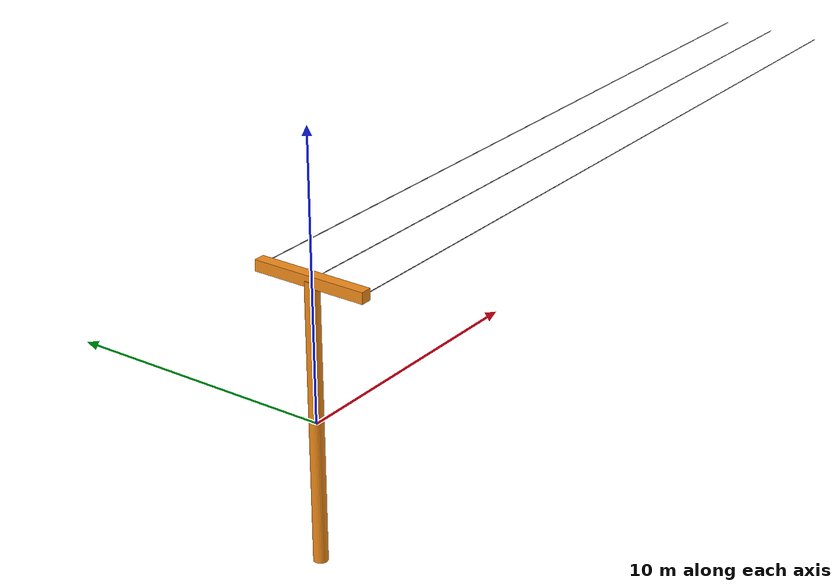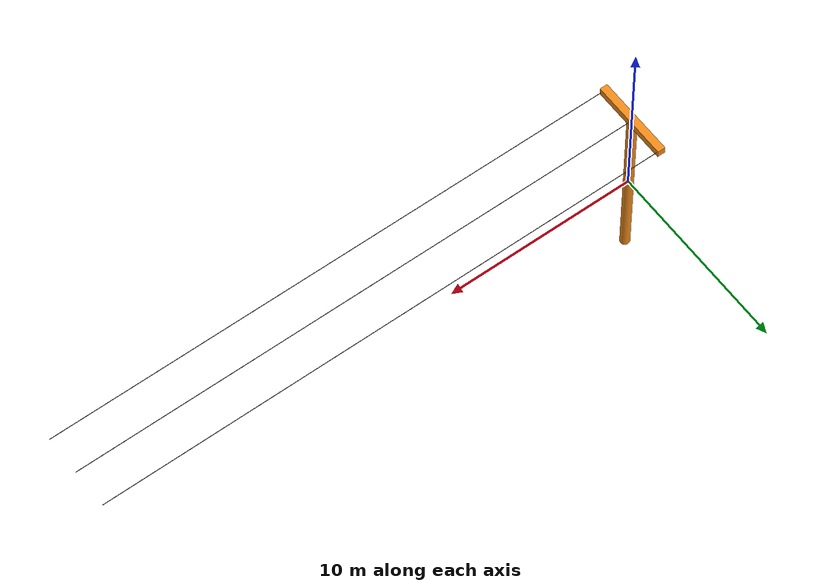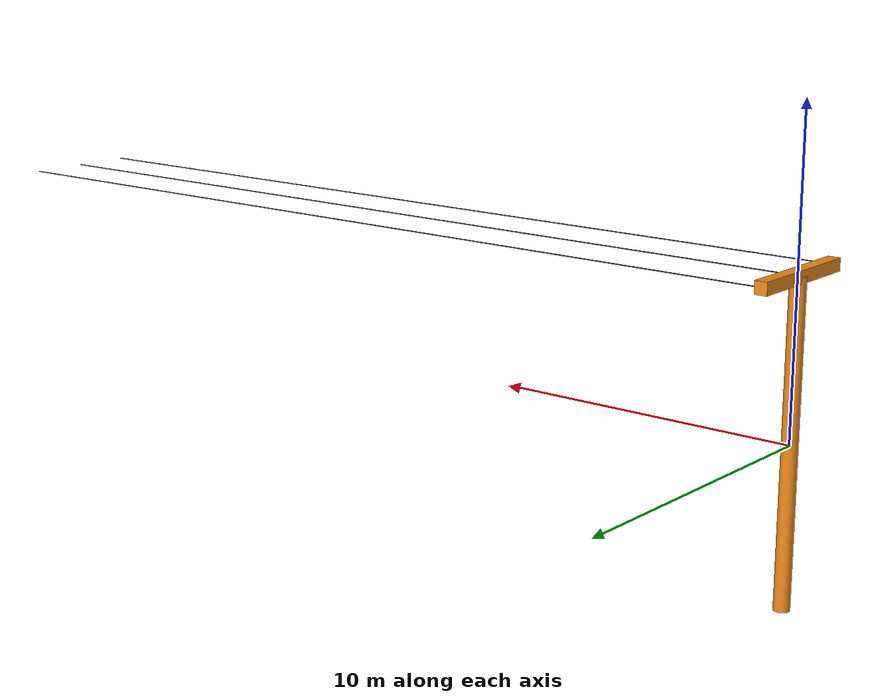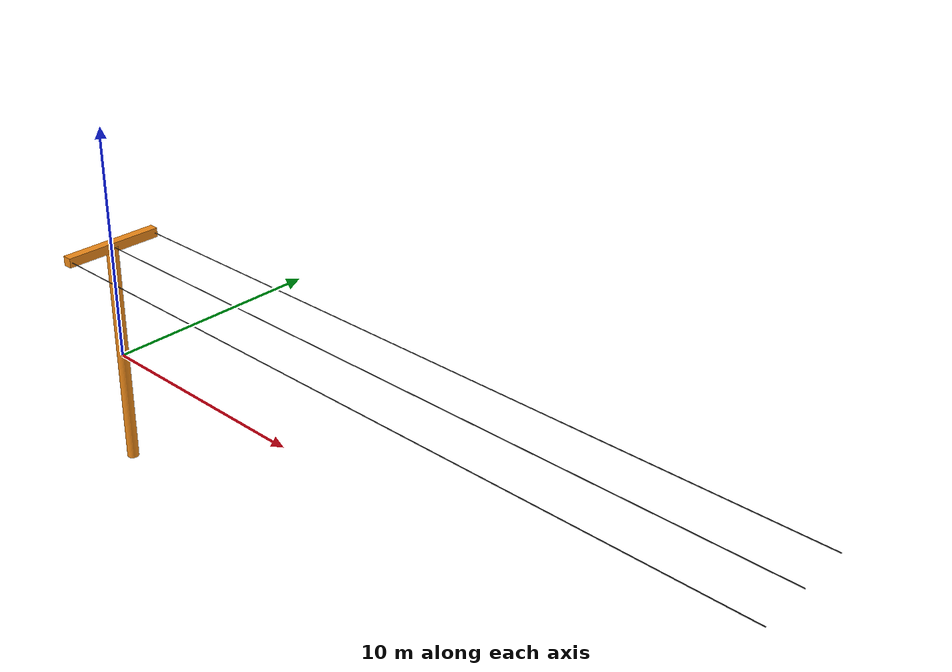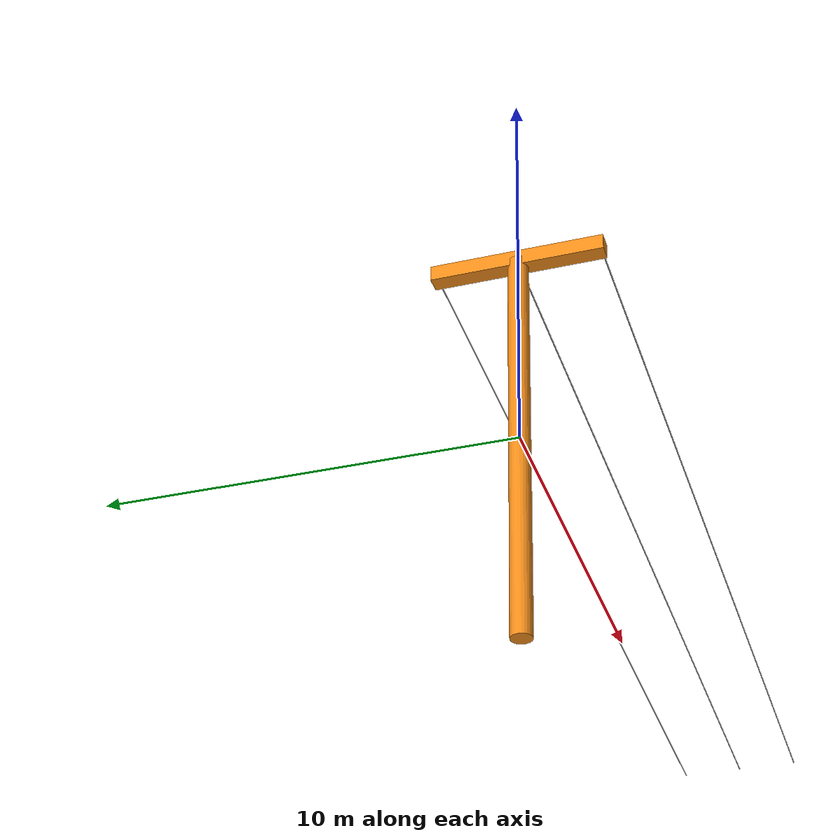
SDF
<sdf version='1.6'>
  <model name='pole'>
    <link name='footprint'>
      <pose frame=''>0 0 0 0 -0 0</pose>
      <inertial>
        <pose frame=''>0.044423 0 0.064166 0 -0 0</pose>
        <mass>101.3</mass>
        <inertia>
          <ixx>871.771</ixx>
          <ixy>-4.44089e-16</ixy>
          <ixz>-22.2113</ixz>
          <iyy>938.276</iyy>
          <iyz>0</iyz>
          <izz>75.2211</izz>
        </inertia>
      </inertial>
      <collision name='footprint_fixed_joint_lump__base_link_collision'>
        <pose frame=''>0 0 0 0 -0 0</pose>
        <geometry>
          <cylinder>
            <length>10</length>
            <radius>0.25</radius>
          </cylinder>
        </geometry>
        <surface>
          <contact>
            <ode/>
          </contact>
          <friction>
            <ode/>
          </friction>
        </surface>
      </collision>
      <collision name='footprint_fixed_joint_lump__top_collision_1'>
        <pose frame=''>0 0 5 0 -0 1.5708</pose>
        <geometry>
          <box>
            <size>4.2 0.4 0.4</size>
          </box>
        </geometry>
        <surface>
          <contact>
            <ode/>
          </contact>
          <friction>
            <ode/>
          </friction>
        </surface>
      </collision>
      <collision name='footprint_fixed_joint_lump__center_cable_link_collision_2'>
        <pose frame=''>15 0 5 3.14159 1.57079 3.14159</pose>
        <geometry>
          <cylinder>
            <length>30</length>
            <radius>0.015</radius>
          </cylinder>
        </geometry>
        <surface>
          <contact>
            <ode/>
          </contact>
          <friction>
            <ode/>
          </friction>
        </surface>
      </collision>
      <collision name='footprint_fixed_joint_lump__left_cable_link_collision_3'>
        <pose frame=''>15 1.995 5 3.14159 1.57079 3.14159</pose>
        <geometry>
          <cylinder>
            <length>30</length>
            <radius>0.015</radius>
          </cylinder>
        </geometry>
        <surface>
          <contact>
            <ode/>
          </contact>
          <friction>
            <ode/>
          </friction>
        </surface>
      </collision>
      <collision name='footprint_fixed_joint_lump__right_cable_link_collision_4'>
        <pose frame=''>15 -1.995 5 3.14159 1.57079 3.14159</pose>
        <geometry>
          <cylinder>
            <length>30</length>
            <radius>0.015</radius>
          </cylinder>
        </geometry>
        <surface>
          <contact>
            <ode/>
          </contact>
          <friction>
            <ode/>
          </friction>
        </surface>
      </collision>
      <visual name='footprint_fixed_joint_lump__base_link_visual'>
        <pose frame=''>0 0 0 0 -0 0</pose>
        <geometry>
          <cylinder>
            <length>10</length>
            <radius>0.25</radius>
          </cylinder>
        </geometry>
        <material>
          <script>
            <name>Gazebo/Orange</name>
            <uri>file://media/materials/scripts/gazebo.material</uri>
          </script>
        </material>
      </visual>
      <visual name='footprint_fixed_joint_lump__top_visual_1'>
        <pose frame=''>0 0 5 0 -0 1.5708</pose>
        <geometry>
          <box>
            <size>4.2 0.4 0.4</size>
          </box>
        </geometry>
        <material>
          <script>
            <name>Gazebo/Orange</name>
            <uri>file://media/materials/scripts/gazebo.material</uri>
          </script>
        </material>
      </visual>
      <visual name='footprint_fixed_joint_lump__center_cable_link_visual_2'>
        <pose frame=''>15 0 5 3.14159 1.57079 3.14159</pose>
        <geometry>
          <cylinder>
            <length>30</length>
            <radius>0.015</radius>
          </cylinder>
        </geometry>
        <material>
          <script>
            <name>Gazebo/Black</name>
            <uri>file://media/materials/scripts/gazebo.material</uri>
          </script>
        </material>
      </visual>
      <visual name='footprint_fixed_joint_lump__left_cable_link_visual_3'>
        <pose frame=''>15 1.995 5 3.14159 1.57079 3.14159</pose>
        <geometry>
          <cylinder>
            <length>30</length>
            <radius>0.015</radius>
          </cylinder>
        </geometry>
        <material>
          <script>
            <name>Gazebo/Black</name>
            <uri>file://media/materials/scripts/gazebo.material</uri>
          </script>
        </material>
      </visual>
      <visual name='footprint_fixed_joint_lump__right_cable_link_visual_4'>
        <pose frame=''>15 -1.995 5 3.14159 1.57079 3.14159</pose>
        <geometry>
          <cylinder>
            <length>30</length>
            <radius>0.015</radius>
          </cylinder>
        </geometry>
        <material>
          <script>
            <name>Gazebo/Black</name>
            <uri>file://media/materials/scripts/gazebo.material</uri>
          </script>
        </material>
      </visual>
      <velocity_decay/>
      <velocity_decay/>
      <velocity_decay/>
      <velocity_decay/>
      <gravity>1</gravity>
      <velocity_decay/>
      <self_collide>0</self_collide>
    </link>
    <static>1</static>
  </model>
</sdf>
